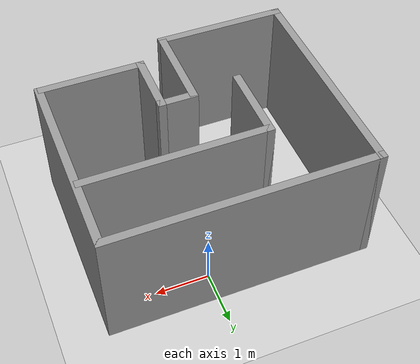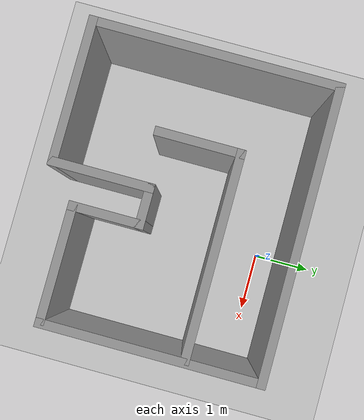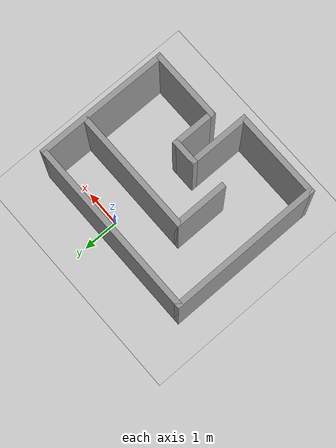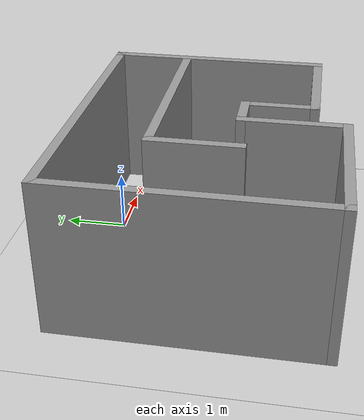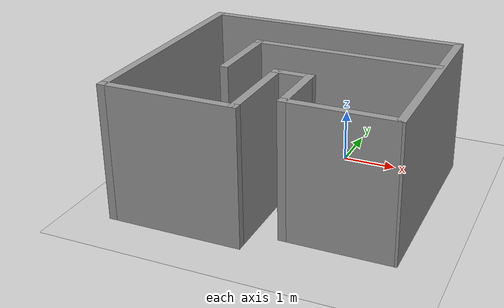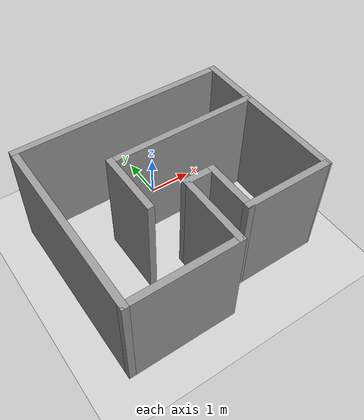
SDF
<sdf version="1.7">
 <world name="default">
  <light name="sun" type="directional">
   <pose>0 0 10 0 -0 0</pose>
   <diffuse>0.8 0.8 0.8 1</diffuse>
   <specular>0.2 0.2 0.2 1</specular>
   <attenuation>
    <range>1000</range>
    <constant>0.9</constant>
    <linear>0.01</linear>
    <quadratic>0.001</quadratic>
   </attenuation>
   <direction>-0.5 0.1 -0.9</direction>
   <spot><inner_angle>0</inner_angle><outer_angle>0</outer_angle><falloff>0</falloff></spot>
  </light>
  <model name="ground_plane">
   <static>1</static>
   <link name="link">
    <collision name="collision">
     <geometry><plane><normal>0 0 1</normal><size>100 100</size></plane></geometry>
     <surface>
      <friction><ode><mu>3.0</mu><mu2>3.0</mu2><slip1>0.0</slip1><slip2>0.0</slip2></ode></friction>
      <contact>
       <ode><kp>10000.0</kp><kd>150.0</kd><max_vel>0.8</max_vel><min_depth>0.00005</min_depth></ode>
       <bounce><restitution_coefficient>0.0</restitution_coefficient><threshold>1e-3</threshold></bounce>
      </contact>
     </surface>
    </collision>
    <visual name="visual">
     <cast_shadows>0</cast_shadows>
     <geometry><plane><normal>0 0 1</normal><size>100 100</size></plane></geometry>
     <material>
      <script><uri>file://media/materials/scripts/gazebo.material</uri><name>Gazebo/Grey</name></script>
     </material>
    </visual>
   </link>
  </model>
  <gravity>0 0 -9.8</gravity>
  <magnetic_field>6e-06 2.3e-05 -4.2e-05</magnetic_field>
  <atmosphere type="adiabatic"/>
  <physics type="ode">
   <max_step_size>0.001</max_step_size>
   <real_time_update_rate>1000</real_time_update_rate>
   <ode>
    <solver><type>quick</type><iters>300</iters><sor>1.3</sor></solver>
    <constraints>
     <cfm>0.0</cfm>
     <erp>0.2</erp>
     <contact_max_correcting_vel>0.8</contact_max_correcting_vel>
     <contact_surface_layer>0.00005</contact_surface_layer>
    </constraints>
   </ode>
  </physics>
  <scene><ambient>0.4 0.4 0.4 1</ambient><background>0.7 0.7 0.7 1</background><shadows>1</shadows></scene>
  <audio><device>default</device></audio>
  <spherical_coordinates>
   <surface_model>EARTH_WGS84</surface_model>
   <latitude_deg>0</latitude_deg>
   <longitude_deg>0</longitude_deg>
   <elevation>0</elevation>
   <heading_deg>0</heading_deg>
  </spherical_coordinates>
  <model name="T1">
   <pose>-0.470675 -1.41831 0 0 -0 0</pose>
   <link name="Wall_0">
    <collision name="Wall_0_Collision">
     <geometry><box><size>1.5 0.15 2.5</size></box></geometry>
     <pose>0 0 1.25 0 -0 0</pose>
    </collision>
    <visual name="Wall_0_Visual">
     <pose>0 0 1.25 0 -0 0</pose>
     <geometry><box><size>1.5 0.15 2.5</size></box></geometry>
     <material>
      <script><uri>file://media/materials/scripts/gazebo.material</uri><name>Gazebo/Grey</name></script>
      <ambient>1 1 1 1</ambient>
     </material>
     <meta><layer>0</layer></meta>
    </visual>
    <pose>-0.975 -0.0825 0 0 -0 1.5708</pose>
   </link>
   <link name="Wall_1">
    <collision name="Wall_1_Collision">
     <geometry><box><size>3.5 0.15 2.5</size></box></geometry>
     <pose>0 0 1.25 0 -0 0</pose>
    </collision>
    <visual name="Wall_1_Visual">
     <pose>0 0 1.25 0 -0 0</pose>
     <geometry><box><size>3.5 0.15 2.5</size></box></geometry>
     <material>
      <script><uri>file://media/materials/scripts/gazebo.material</uri><name>Gazebo/Grey</name></script>
      <ambient>1 1 1 1</ambient>
     </material>
     <meta><layer>0</layer></meta>
    </visual>
    <pose>0.7 0.5925 0 0 -0 0</pose>
   </link>
   <link name="Wall_10">
    <collision name="Wall_10_Collision">
     <geometry><box><size>4.25 0.15 2.5</size></box></geometry>
     <pose>0 0 1.25 0 -0 0</pose>
    </collision>
    <visual name="Wall_10_Visual">
     <pose>0 0 1.25 0 -0 0</pose>
     <geometry><box><size>4.25 0.15 2.5</size></box></geometry>
     <material>
      <script><uri>file://media/materials/scripts/gazebo.material</uri><name>Gazebo/Grey</name></script>
      <ambient>1 1 1 1</ambient>
     </material>
     <meta><layer>0</layer></meta>
    </visual>
    <pose>-2.425 -0.2075 0 0 -0 1.5708</pose>
   </link>
   <link name="Wall_11">
    <collision name="Wall_11_Collision">
     <geometry><box><size>5 0.15 2.5</size></box></geometry>
     <pose>0 0 1.25 0 -0 0</pose>
    </collision>
    <visual name="Wall_11_Visual">
     <pose>0 0 1.25 0 -0 0</pose>
     <geometry><box><size>5 0.15 2.5</size></box></geometry>
     <material>
      <script><uri>file://media/materials/scripts/gazebo.material</uri><name>Gazebo/Grey</name></script>
      <ambient>1 1 1 1</ambient>
     </material>
     <meta><layer>0</layer></meta>
    </visual>
    <pose>0 1.8425 0 0 -0 0</pose>
   </link>
   <link name="Wall_13">
    <collision name="Wall_13_Collision">
     <geometry><box><size>3.75 0.15 2.5</size></box></geometry>
     <pose>0 0 1.25 0 -0 0</pose>
    </collision>
    <visual name="Wall_13_Visual">
     <pose>0 0 1.25 0 -0 0</pose>
     <geometry><box><size>3.75 0.15 2.5</size></box></geometry>
     <material>
      <script><uri>file://media/materials/scripts/gazebo.material</uri><name>Gazebo/Grey</name></script>
      <ambient>1 1 1 1</ambient>
     </material>
     <meta><layer>0</layer></meta>
    </visual>
    <pose>2.425 0.0425 0 0 -0 -1.5708</pose>
   </link>
   <link name="Wall_5">
    <collision name="Wall_5_Collision">
     <geometry><box><size>2 0.15 2.5</size></box></geometry>
     <pose>0 0 1.25 0 -0 0</pose>
    </collision>
    <visual name="Wall_5_Visual">
     <pose>0 0 1.25 0 -0 0</pose>
     <geometry><box><size>2 0.15 2.5</size></box></geometry>
     <material>
      <script><uri>file://media/materials/scripts/gazebo.material</uri><name>Gazebo/Grey</name></script>
      <ambient>1 1 1 1</ambient>
     </material>
     <meta><layer>0</layer></meta>
    </visual>
    <pose>1.45 -1.7575 0 0 -0 3.14159</pose>
   </link>
   <link name="Wall_6">
    <collision name="Wall_6_Collision">
     <geometry><box><size>1.25 0.15 2.5</size></box></geometry>
     <pose>0 0 1.25 0 -0 0</pose>
    </collision>
    <visual name="Wall_6_Visual">
     <pose>0 0 1.25 0 -0 0</pose>
     <geometry><box><size>1.25 0.15 2.5</size></box></geometry>
     <material>
      <script><uri>file://media/materials/scripts/gazebo.material</uri><name>Gazebo/Grey</name></script>
      <ambient>1 1 1 1</ambient>
     </material>
     <meta><layer>0</layer></meta>
    </visual>
    <pose>0.525 -1.2075 0 0 -0 1.5708</pose>
   </link>
   <link name="Wall_7">
    <collision name="Wall_7_Collision">
     <geometry><box><size>0.75 0.15 2.5</size></box></geometry>
     <pose>0 0 1.25 0 -0 0</pose>
    </collision>
    <visual name="Wall_7_Visual">
     <pose>0 0 1.25 0 -0 0</pose>
     <geometry><box><size>0.75 0.15 2.5</size></box></geometry>
     <material>
      <script><uri>file://media/materials/scripts/gazebo.material</uri><name>Gazebo/Grey</name></script>
      <ambient>1 1 1 1</ambient>
     </material>
     <meta><layer>0</layer></meta>
    </visual>
    <pose>0.225 -0.6575 0 0 -0 3.14159</pose>
   </link>
   <link name="Wall_8">
    <collision name="Wall_8_Collision">
     <geometry><box><size>1.75 0.15 2.5</size></box></geometry>
     <pose>0 0 1.25 0 -0 0</pose>
    </collision>
    <visual name="Wall_8_Visual">
     <pose>0 0 1.25 0 -0 0</pose>
     <geometry><box><size>1.75 0.15 2.5</size></box></geometry>
     <material>
      <script><uri>file://media/materials/scripts/gazebo.material</uri><name>Gazebo/Grey</name></script>
      <ambient>1 1 1 1</ambient>
     </material>
     <meta><layer>0</layer></meta>
    </visual>
    <pose>-0.075 -1.4575 0 0 -0 -1.5708</pose>
   </link>
   <link name="Wall_9">
    <collision name="Wall_9_Collision">
     <geometry><box><size>2.5 0.15 2.5</size></box></geometry>
     <pose>0 0 1.25 0 -0 0</pose>
    </collision>
    <visual name="Wall_9_Visual">
     <pose>0 0 1.25 0 -0 0</pose>
     <geometry><box><size>2.5 0.15 2.5</size></box></geometry>
     <material>
      <script><uri>file://media/materials/scripts/gazebo.material</uri><name>Gazebo/Grey</name></script>
      <ambient>1 1 1 1</ambient>
     </material>
     <meta><layer>0</layer></meta>
    </visual>
    <pose>-1.25 -2.2575 0 0 -0 3.14159</pose>
   </link>
   <static>1</static>
  </model>
 </world>
</sdf>
